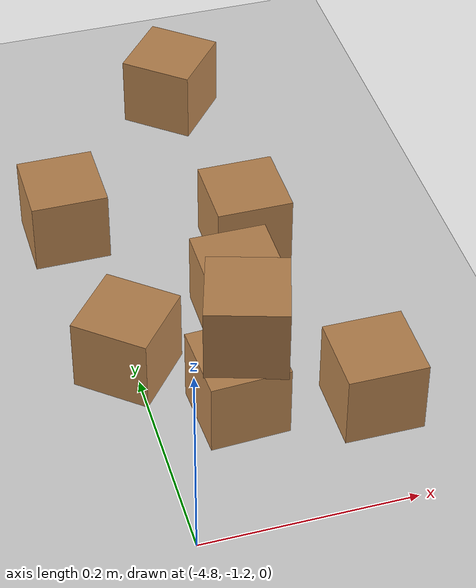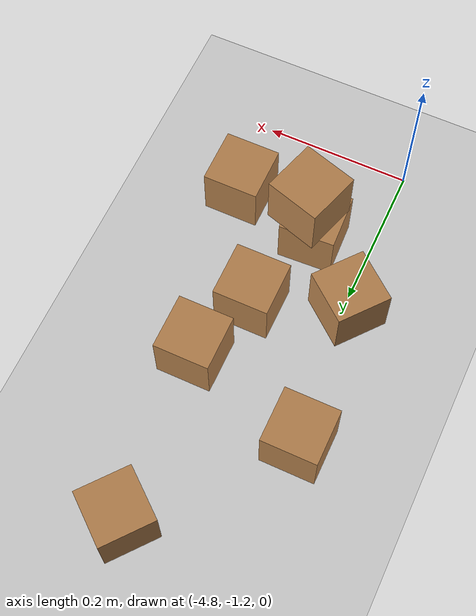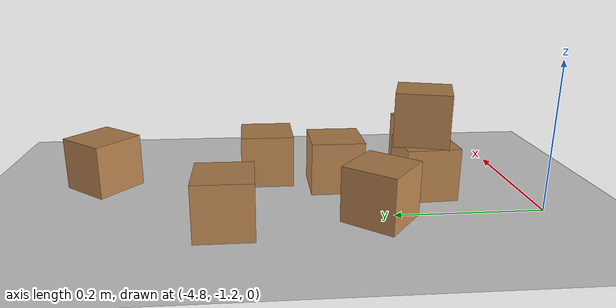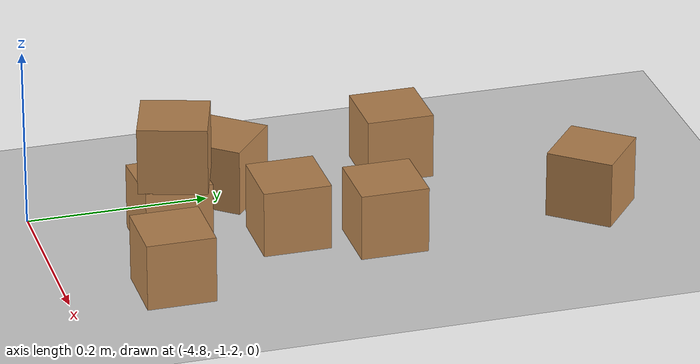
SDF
<sdf version="1.6">
 <world name="default">
  <model name="ground_plane">
   <static>1</static>
   <link name="link">
    <collision name="collision">
     <geometry><plane><normal>0 0 1</normal><size>100 100</size></plane></geometry>
     <surface><friction><ode><mu>100</mu><mu2>50</mu2></ode></friction></surface>
    </collision>
    <visual name="visual">
     <cast_shadows>0</cast_shadows>
     <geometry><plane><normal>0 0 1</normal><size>100 100</size></plane></geometry>
     <material>
      <script><uri>file://media/materials/scripts/gazebo.material</uri><name>Gazebo/Grey</name></script>
     </material>
    </visual>
   </link>
  </model>
  <model name="wood_cube_7_5cm_clone_4">
   <link name="link">
    <pose>0 0 0.0375 0 -0 0</pose>
    <inertial>
     <mass>0.2249</mass>
     <inertia>
      <ixx>0.000210844</ixx>
      <ixy>0</ixy>
      <ixz>0</ixz>
      <iyy>0.000210844</iyy>
      <iyz>0</iyz>
      <izz>0.000210844</izz>
     </inertia>
    </inertial>
    <collision name="collision">
     <geometry><box><size>0.075 0.075 0.075</size></box></geometry>
     <surface>
      <contact>
       <poissons_ratio>0.347</poissons_ratio>
       <elastic_modulus>8.8e+09</elastic_modulus>
       <ode><kp>100000</kp><kd>100</kd><max_vel>100</max_vel><min_depth>0.001</min_depth></ode>
      </contact>
      <friction>
       <torsional>
        <coefficient>1</coefficient>
        <use_patch_radius>0</use_patch_radius>
        <surface_radius>0.01</surface_radius>
       </torsional>
      </friction>
     </surface>
    </collision>
    <visual name="visual">
     <geometry><box><size>0.075 0.075 0.075</size></box></geometry>
     <material>
      <script><uri>file://media/materials/scripts/gazebo.material</uri><name>Gazebo/Wood</name></script>
     </material>
    </visual>
   </link>
   <pose>-4.72319 -1.05993 -0.001011 -1.3e-05 3.7e-05 0.048566</pose>
  </model>
  <model name="wood_cube_7_5cm_clone_12">
   <link name="link">
    <pose>0 0 0.0375 0 -0 0</pose>
    <inertial>
     <mass>0.2249</mass>
     <inertia>
      <ixx>0.000210844</ixx>
      <ixy>0</ixy>
      <ixz>0</ixz>
      <iyy>0.000210844</iyy>
      <iyz>0</iyz>
      <izz>0.000210844</izz>
     </inertia>
    </inertial>
    <collision name="collision">
     <geometry><box><size>0.075 0.075 0.075</size></box></geometry>
     <surface>
      <contact>
       <poissons_ratio>0.347</poissons_ratio>
       <elastic_modulus>8.8e+09</elastic_modulus>
       <ode><kp>100000</kp><kd>100</kd><max_vel>100</max_vel><min_depth>0.001</min_depth></ode>
      </contact>
      <friction>
       <torsional>
        <coefficient>1</coefficient>
        <use_patch_radius>0</use_patch_radius>
        <surface_radius>0.01</surface_radius>
       </torsional>
      </friction>
     </surface>
    </collision>
    <visual name="visual">
     <geometry><box><size>0.075 0.075 0.075</size></box></geometry>
     <material>
      <script><uri>file://media/materials/scripts/gazebo.material</uri><name>Gazebo/Wood</name></script>
     </material>
    </visual>
   </link>
   <pose>-4.6518 -0.839595 -0.001005 0 -0 0</pose>
  </model>
  <model name="wood_cube_7_5cm_clone_7_clone_8">
   <link name="link">
    <pose>0 0 0.0375 0 -0 0</pose>
    <inertial>
     <mass>0.2249</mass>
     <inertia>
      <ixx>0.000210844</ixx>
      <ixy>0</ixy>
      <ixz>0</ixz>
      <iyy>0.000210844</iyy>
      <iyz>0</iyz>
      <izz>0.000210844</izz>
     </inertia>
    </inertial>
    <collision name="collision">
     <geometry><box><size>0.075 0.075 0.075</size></box></geometry>
     <surface>
      <contact>
       <poissons_ratio>0.347</poissons_ratio>
       <elastic_modulus>8.8e+09</elastic_modulus>
       <ode><kp>100000</kp><kd>100</kd><max_vel>100</max_vel><min_depth>0.001</min_depth></ode>
      </contact>
      <friction>
       <torsional>
        <coefficient>1</coefficient>
        <use_patch_radius>0</use_patch_radius>
        <surface_radius>0.01</surface_radius>
       </torsional>
      </friction>
     </surface>
    </collision>
    <visual name="visual">
     <geometry><box><size>0.075 0.075 0.075</size></box></geometry>
     <material>
      <script><uri>file://media/materials/scripts/gazebo.material</uri><name>Gazebo/Wood</name></script>
     </material>
    </visual>
   </link>
   <pose>-4.60405 -1.08623 -0.001005 0 -0 0</pose>
  </model>
  <model name="wood_cube_7_5cm_clone_7_clone_9">
   <link name="link">
    <pose>0 0 0.0375 0 -0 0</pose>
    <inertial>
     <mass>0.2249</mass>
     <inertia>
      <ixx>0.000210844</ixx>
      <ixy>0</ixy>
      <ixz>0</ixz>
      <iyy>0.000210844</iyy>
      <iyz>0</iyz>
      <izz>0.000210844</izz>
     </inertia>
    </inertial>
    <collision name="collision">
     <geometry><box><size>0.075 0.075 0.075</size></box></geometry>
     <surface>
      <contact>
       <poissons_ratio>0.347</poissons_ratio>
       <elastic_modulus>8.8e+09</elastic_modulus>
       <ode><kp>100000</kp><kd>100</kd><max_vel>100</max_vel><min_depth>0.001</min_depth></ode>
      </contact>
      <friction>
       <torsional>
        <coefficient>1</coefficient>
        <use_patch_radius>0</use_patch_radius>
        <surface_radius>0.01</surface_radius>
       </torsional>
      </friction>
     </surface>
    </collision>
    <visual name="visual">
     <geometry><box><size>0.075 0.075 0.075</size></box></geometry>
     <material>
      <script><uri>file://media/materials/scripts/gazebo.material</uri><name>Gazebo/Wood</name></script>
     </material>
    </visual>
   </link>
   <pose>-4.68703 -0.937548 -0.001005 0 -0 0</pose>
  </model>
  <model name="wood_cube_7_5cm_clone_7_clone_10">
   <link name="link">
    <pose>0 0 0.0375 0 -0 0</pose>
    <inertial>
     <mass>0.2249</mass>
     <inertia>
      <ixx>0.000210844</ixx>
      <ixy>0</ixy>
      <ixz>0</ixz>
      <iyy>0.000210844</iyy>
      <iyz>0</iyz>
      <izz>0.000210844</izz>
     </inertia>
    </inertial>
    <collision name="collision">
     <geometry><box><size>0.075 0.075 0.075</size></box></geometry>
     <surface>
      <contact>
       <poissons_ratio>0.347</poissons_ratio>
       <elastic_modulus>8.8e+09</elastic_modulus>
       <ode><kp>100000</kp><kd>100</kd><max_vel>100</max_vel><min_depth>0.001</min_depth></ode>
      </contact>
      <friction>
       <torsional>
        <coefficient>1</coefficient>
        <use_patch_radius>0</use_patch_radius>
        <surface_radius>0.01</surface_radius>
       </torsional>
      </friction>
     </surface>
    </collision>
    <visual name="visual">
     <geometry><box><size>0.075 0.075 0.075</size></box></geometry>
     <material>
      <script><uri>file://media/materials/scripts/gazebo.material</uri><name>Gazebo/Wood</name></script>
     </material>
    </visual>
   </link>
   <pose>-4.8217 -0.782491 -0.001005 0 -0 0</pose>
  </model>
  <model name="wood_cube_7_5cm_clone_7_clone_1_clone_1">
   <link name="link">
    <pose>0 0 0.0375 0 -0 0</pose>
    <inertial>
     <mass>0.2249</mass>
     <inertia>
      <ixx>0.000210844</ixx>
      <ixy>0</ixy>
      <ixz>0</ixz>
      <iyy>0.000210844</iyy>
      <iyz>0</iyz>
      <izz>0.000210844</izz>
     </inertia>
    </inertial>
    <collision name="collision">
     <geometry><box><size>0.075 0.075 0.075</size></box></geometry>
     <surface>
      <contact>
       <poissons_ratio>0.347</poissons_ratio>
       <elastic_modulus>8.8e+09</elastic_modulus>
       <ode><kp>100000</kp><kd>100</kd><max_vel>100</max_vel><min_depth>0.001</min_depth></ode>
      </contact>
      <friction>
       <torsional>
        <coefficient>1</coefficient>
        <use_patch_radius>0</use_patch_radius>
        <surface_radius>0.01</surface_radius>
       </torsional>
      </friction>
     </surface>
    </collision>
    <visual name="visual">
     <geometry><box><size>0.075 0.075 0.075</size></box></geometry>
     <material>
      <script><uri>file://media/materials/scripts/gazebo.material</uri><name>Gazebo/Wood</name></script>
     </material>
    </visual>
   </link>
   <pose>-4.66526 -0.602492 -0.001005 0 0 -0.685305</pose>
  </model>
  <model name="wood_cube_7_5cm_clone_7_clone_1_clone_12">
   <link name="link">
    <pose>0 0 0.0375 0 -0 0</pose>
    <inertial>
     <mass>0.2249</mass>
     <inertia>
      <ixx>0.000210844</ixx>
      <ixy>0</ixy>
      <ixz>0</ixz>
      <iyy>0.000210844</iyy>
      <iyz>0</iyz>
      <izz>0.000210844</izz>
     </inertia>
    </inertial>
    <collision name="collision">
     <geometry><box><size>0.075 0.075 0.075</size></box></geometry>
     <surface>
      <contact>
       <poissons_ratio>0.347</poissons_ratio>
       <elastic_modulus>8.8e+09</elastic_modulus>
       <ode><kp>100000</kp><kd>100</kd><max_vel>100</max_vel><min_depth>0.001</min_depth></ode>
      </contact>
      <friction>
       <torsional>
        <coefficient>1</coefficient>
        <use_patch_radius>0</use_patch_radius>
        <surface_radius>0.01</surface_radius>
       </torsional>
      </friction>
     </surface>
    </collision>
    <visual name="visual">
     <geometry><box><size>0.075 0.075 0.075</size></box></geometry>
     <material>
      <script><uri>file://media/materials/scripts/gazebo.material</uri><name>Gazebo/Wood</name></script>
     </material>
    </visual>
   </link>
   <pose>-4.80526 -0.979754 -0.001005 0 0 -0.685305</pose>
  </model>
  <model name="wood_cube_7_5cm_clone_7_clone_1_clone_16">
   <link name="link">
    <pose>0 0 0.0375 0 -0 0</pose>
    <inertial>
     <mass>0.2249</mass>
     <inertia>
      <ixx>0.000210844</ixx>
      <ixy>0</ixy>
      <ixz>0</ixz>
      <iyy>0.000210844</iyy>
      <iyz>0</iyz>
      <izz>0.000210844</izz>
     </inertia>
    </inertial>
    <collision name="collision">
     <geometry><box><size>0.075 0.075 0.075</size></box></geometry>
     <surface>
      <contact>
       <poissons_ratio>0.347</poissons_ratio>
       <elastic_modulus>8.8e+09</elastic_modulus>
       <ode><kp>100000</kp><kd>100</kd><max_vel>100</max_vel><min_depth>0.001</min_depth></ode>
      </contact>
      <friction>
       <torsional>
        <coefficient>1</coefficient>
        <use_patch_radius>0</use_patch_radius>
        <surface_radius>0.01</surface_radius>
       </torsional>
      </friction>
     </surface>
    </collision>
    <visual name="visual">
     <geometry><box><size>0.075 0.075 0.075</size></box></geometry>
     <material>
      <script><uri>file://media/materials/scripts/gazebo.material</uri><name>Gazebo/Wood</name></script>
     </material>
    </visual>
   </link>
   <pose>-4.71373 -1.05608 0.072986 -3.6e-05 3.1e-05 -0.299888</pose>
  </model>
 </world>
</sdf>
